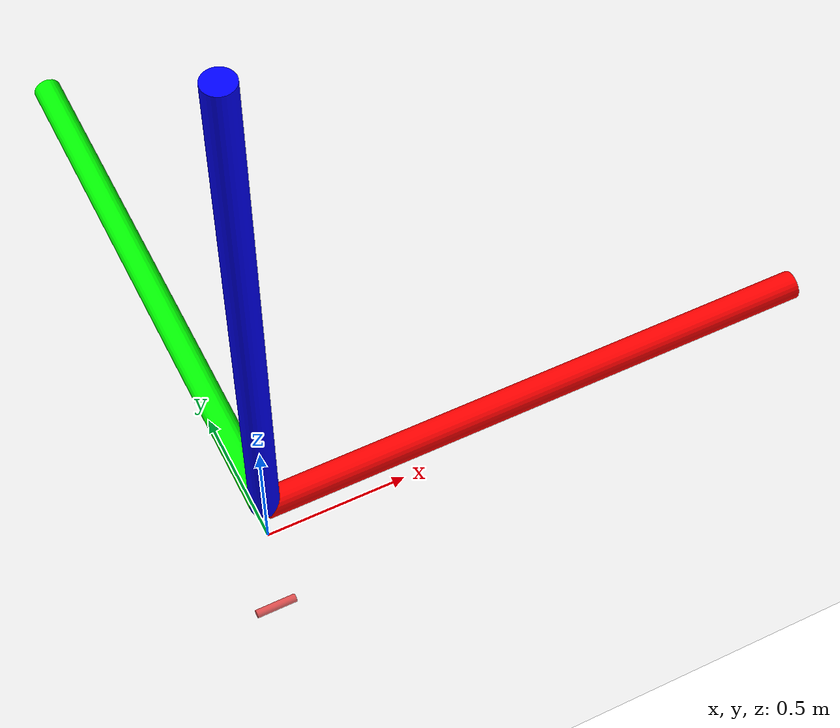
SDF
<sdf version="1.6">
 <world name="torpedo_underwater">
  <plugin filename="gz-sim-physics-system" name="gz::sim::systems::Physics"/>
  <plugin filename="gz-sim-user-commands-system" name="gz::sim::systems::UserCommands"/>
  <plugin filename="gz-sim-scene-broadcaster-system" name="gz::sim::systems::SceneBroadcaster"/>
  <plugin filename="libgz-sim-imu-system.so" name="gz::sim::systems::Imu"/>
  <plugin filename="gz-sim-sensors-system" name="gz::sim::systems::Sensors">
   <render_engine>ogre2</render_engine>
  </plugin>
  <plugin filename="gz-sim-buoyancy-system" name="gz::sim::systems::Buoyancy">
   <graded_buoyancy>
    <default_density>1000</default_density>
    <density_change><above_depth>0.0</above_depth><density>1</density></density_change>
   </graded_buoyancy>
   <enable>torpedo</enable>
  </plugin>
  <include><uri>https://fuel.gazebosim.org/1.0/OpenRobotics/models/Sun</uri></include>
  <include><uri>model://ground_plane</uri><pose>0 0 0.1 3.14 0 0</pose></include>
  <include><uri>model://torpedo</uri><pose>0 0 -0.5 0 0 0</pose></include>
  <include>
   <uri>model://axes</uri>
   <pose>0 0 0.2 0 0 0</pose>
   <plugin filename="gz-sim-label-system" name="gz::sim::systems::Label"><label>150</label></plugin>
  </include>
 </world>
</sdf>

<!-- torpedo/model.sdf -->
<sdf version="1.11">
  <model name="torpedo">
    <static>false</static>
    <link name="link">
      <inertial>
        <mass>0.1</mass>
        <inertia>
          <ixx>0.000011</ixx><ixy>0</ixy><ixz>0</ixz>
          <iyy>0.00019</iyy><iyz>0</iyz>
          <izz>0.00019</izz>
        </inertia>
      </inertial>

      <visual name="torpedo_visual">
        <pose>0 0 0 0 1.5708 0</pose>
        <geometry>
          <cylinder>
            <radius>0.015</radius>
            <length>0.15</length>
          </cylinder>
        </geometry>
        <material>
          <ambient>0.9 0.1 0.1 1</ambient>
          <diffuse>0.9 0.1 0.1 1</diffuse>
        </material>
      </visual>

      <collision name="torpedo_collision">
        <pose>0 0 0 0 1.5708 0</pose>
        <geometry>
          <cylinder>
            <radius>0.015</radius>
            <length>0.15</length>
          </cylinder>
        </geometry>
      </collision>
    </link>

    <plugin
        filename="gz-sim-velocity-control-system"
        name="gz::sim::systems::VelocityControl">
    </plugin>
  </model>
</sdf>

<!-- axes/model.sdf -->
<sdf version='1.6'>
  <model name='axes'>
    <static>true</static>
    <pose>0 0 0 0 0 0</pose>

    <link name="x_axis">
      <visual name="x_visual">
        <pose degrees="true">1 0 0 90 0 90</pose>
        <geometry>
          <cylinder>
            <radius>0.05</radius>
            <length>2</length>
          </cylinder>
        </geometry>
        <material>
          <ambient>1 0 0 1</ambient>
          <diffuse>1 0 0 1</diffuse>
          <specular>1 0 0 1</specular>
        </material>
      </visual>
    </link>

    <link name="y_axis">
      <visual name="y_visual">
        <pose degrees="true">0 1 0 0 90 90</pose>
        <geometry>
          <cylinder>
            <radius>0.05</radius>
            <length>2</length>
          </cylinder>
        </geometry>
        <material>
          <ambient>0 1 0 1</ambient>
          <diffuse>0 1 0 1</diffuse>
          <specular>0 1 0 1</specular>
        </material>
      </visual>
    </link>

    <link name="z_axis">
      <visual name="z_visual">
        <pose degrees="true">0 0 1 0 0 0</pose>
        <geometry>
          <cylinder>
            <radius>0.05</radius>
            <length>2</length>
          </cylinder>
        </geometry>
        <material>
          <ambient>0 0 1 1</ambient>
          <diffuse>0 0 1 1</diffuse>
          <specular>0 0 1 1</specular>
        </material>
      </visual>
    </link>

  </model>
</sdf>
